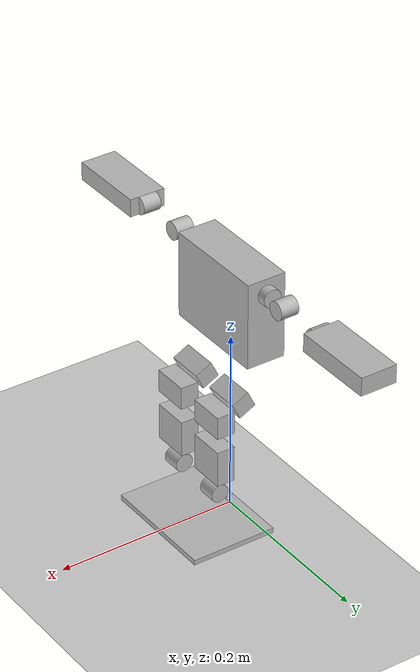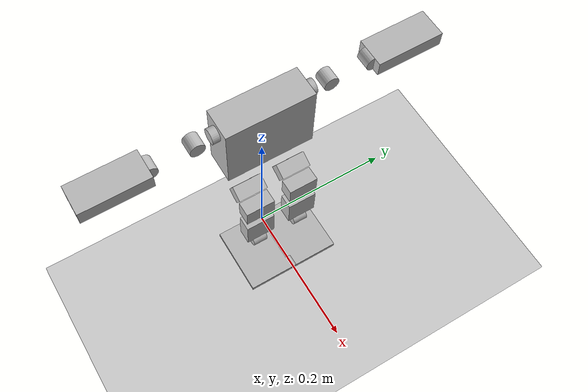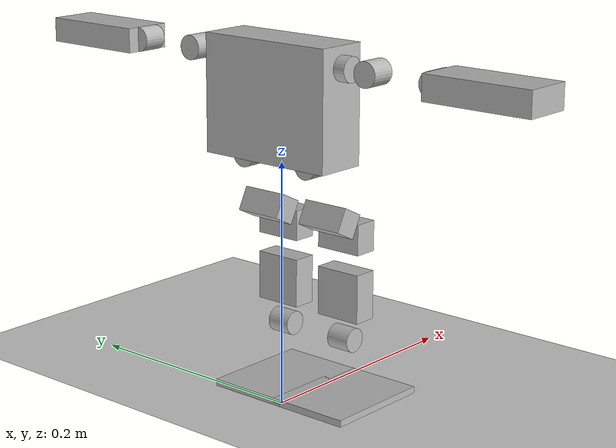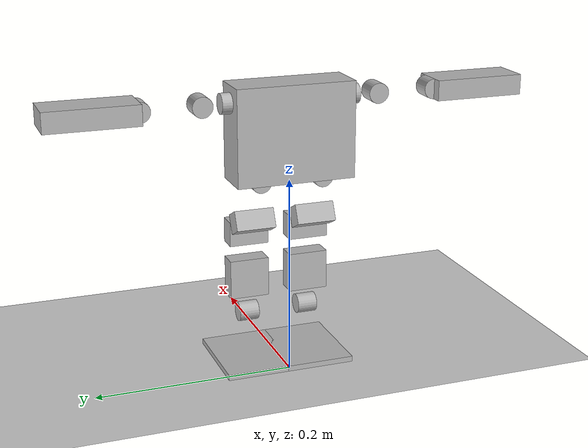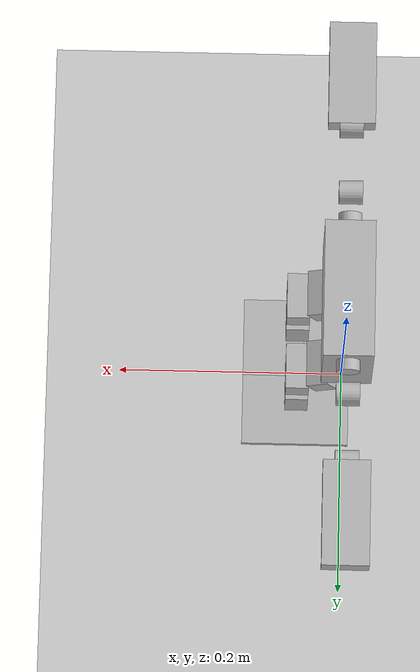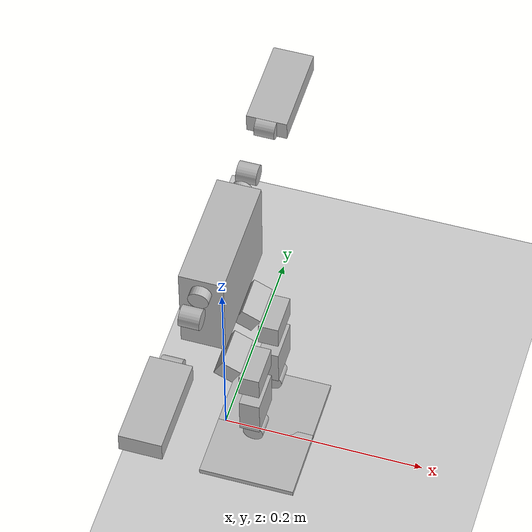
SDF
<sdf version="1.6">
  <world name="default">
    <physics name="default_physics" default="0" type="ode">
      <max_step_size>0.001</max_step_size>
      <real_time_factor>1</real_time_factor>
      <real_time_update_rate>1000</real_time_update_rate>
    </physics>
    <include>
      <uri>model://sun</uri>
    </include>
    <include>
      <uri>model://ground_plane</uri>
    </include>
    <include>
      <uri>model://lobot_h3p</uri>
    </include>
    <gravity>0 0 0</gravity>
    <atmosphere type="adiabatic" />
    <wind />
  </world>
</sdf>

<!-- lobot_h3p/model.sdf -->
<sdf version='1.6'>
  <model name='lobot'>
    <link name='base_link'>
      <pose frame=''>0 0 0.25 0 -0 0</pose>
      <inertial>
        <pose frame=''>-0.012076 -0.004415 0.021424 0 -0 0</pose>
        <mass>0.083321</mass>
        <inertia>
          <ixx>0.0341884</ixx>
          <ixy>8.97553e-06</ixy>
          <ixz>0.00238272</ixz>
          <iyy>0.0335204</iyy>
          <iyz>0.000494612</iyz>
          <izz>0.0451606</izz>
        </inertia>
      </inertial>
      <collision name='base_link_collision'>
        <pose frame=''>0 0 0 0 -0 0</pose>
        <geometry>
          <box>
            <size>0.043 0.118 0.095</size>
          </box>
        </geometry>
      </collision>
      <collision name='base_link_fixed_joint_lump__IMU_link_collision_1'>
        <pose frame=''>0 0 0 0 -0 0</pose>
        <geometry>
          <box>
            <size>0.001 0.001 0.001</size>
          </box>
        </geometry>
        <surface>
          <contact>
            <ode/>
          </contact>
          <friction>
            <ode/>
          </friction>
        </surface>
      </collision>
      <visual name='base_link_visual'>
        <pose frame=''>0 0 0 0 -0 0</pose>
        <geometry>
          <box>
            <size>0.043 0.118 0.095</size>
          </box>
        </geometry>
      </visual>
      <visual name='base_link_fixed_joint_lump__IMU_link_visual_1'>
        <pose frame=''>0 0 0 0 -0 0</pose>
        <geometry>
          <box>
            <size>0.001 0.001 0.001</size>
          </box>
        </geometry>
        <material>
          <script>
            <uri>__default__</uri>
            <name>__default__</name>
          </script>
        </material>
      </visual>
      <gravity>1</gravity>
      <velocity_decay/>
      <sensor name='IMU_lobot' type='imu'>
        <always_on>1</always_on>
        <update_rate>10</update_rate>
        <plugin name='lobot_IMU_controller' filename='libgazebo_ros_imu_sensor.so'/>
        <pose frame=''>0 0 0 0 -0 0</pose>
      </sensor>
    </link>
    <joint name='world_joint' type='fixed'>
      <child>base_link</child>
      <parent>world</parent>
    </joint>
    <link name='arm_left_1_link'>
      <pose frame=''>0 0.059 0.2805 0 -0 0</pose>
      <inertial>
        <pose frame=''>0 0 0 0 -0 0</pose>
        <mass>0.05901</mass>
        <inertia>
          <ixx>0.00132188</ixx>
          <ixy>1.514e-08</ixy>
          <ixz>0.000400223</ixz>
          <iyy>0.00185286</iyy>
          <iyz>5.0713e-07</iyz>
          <izz>0.000842313</izz>
        </inertia>
      </inertial>
      <visual name='arm_left_1_link_visual'>
        <pose frame=''>0 0 0 1.5708 -0 0</pose>
        <geometry>
          <cylinder>
            <length>0.02</length>
            <radius>0.01</radius>
          </cylinder>
        </geometry>
      </visual>
    </link>
    <joint name='arm_left_1_joint' type='revolute'>
      <child>arm_left_1_link</child>
      <parent>base_link</parent>
      <axis>
        <xyz>0 1 0</xyz>
        <limit>
          <lower>-1.57</lower>
          <upper>1.57</upper>
          <effort>50</effort>
          <velocity>4</velocity>
        </limit>
        <dynamics>
          <spring_reference>0</spring_reference>
          <spring_stiffness>0</spring_stiffness>
        </dynamics>
        <use_parent_model_frame>1</use_parent_model_frame>
      </axis>
    </joint>
    <link name='arm_left_2_link'>
      <pose frame=''>0 0.08803 0.2805 0 -0 0</pose>
      <inertial>
        <pose frame=''>0 0 0 0 -0 0</pose>
        <mass>0.05901</mass>
        <inertia>
          <ixx>0.00132188</ixx>
          <ixy>1.514e-08</ixy>
          <ixz>0.000400223</ixz>
          <iyy>0.00185286</iyy>
          <iyz>5.0713e-07</iyz>
          <izz>0.000842313</izz>
        </inertia>
      </inertial>
      <visual name='arm_left_2_link_visual'>
        <pose frame=''>0 0 0 3.14159 1.57079 3.14159</pose>
        <geometry>
          <cylinder>
            <length>0.02</length>
            <radius>0.01</radius>
          </cylinder>
        </geometry>
      </visual>
    </link>
    <joint name='arm_left_2_joint' type='revolute'>
      <child>arm_left_2_link</child>
      <parent>arm_left_1_link</parent>
      <axis>
        <xyz>1 0 0</xyz>
        <limit>
          <lower>-1.5708</lower>
          <upper>1.5708</upper>
          <effort>50</effort>
          <velocity>4</velocity>
        </limit>
        <dynamics>
          <spring_reference>0</spring_reference>
          <spring_stiffness>0</spring_stiffness>
        </dynamics>
        <use_parent_model_frame>1</use_parent_model_frame>
      </axis>
    </joint>
    <link name='arm_left_3_link'>
      <pose frame=''>0 0.14659 0.2805 0 -0 0</pose>
      <inertial>
        <pose frame=''>0 0.0225 0 0 -0 0</pose>
        <mass>0.11802</mass>
        <inertia>
          <ixx>0.0027035</ixx>
          <ixy>3.028e-08</ixy>
          <ixz>0.000800445</ixz>
          <iyy>0.00370572</iyy>
          <iyz>1.01426e-06</iyz>
          <izz>0.00174437</izz>
        </inertia>
      </inertial>
      <collision name='arm_left_3_link_fixed_joint_lump__gripper_left_link_collision'>
        <pose frame=''>0 0.045 0 0 -0 0</pose>
        <geometry>
          <box>
            <size>0.04 0.09 0.02</size>
          </box>
        </geometry>
      </collision>
      <visual name='arm_left_3_link_visual'>
        <pose frame=''>0 0 0 3.14159 1.57079 3.14159</pose>
        <geometry>
          <cylinder>
            <length>0.02</length>
            <radius>0.01</radius>
          </cylinder>
        </geometry>
      </visual>
      <visual name='arm_left_3_link_fixed_joint_lump__gripper_left_link_visual_1'>
        <pose frame=''>0 0.045 0 0 -0 0</pose>
        <geometry>
          <box>
            <size>0.04 0.09 0.02</size>
          </box>
        </geometry>
      </visual>
    </link>
    <joint name='arm_left_3_joint' type='revolute'>
      <child>arm_left_3_link</child>
      <parent>arm_left_2_link</parent>
      <axis>
        <xyz>1 0 0</xyz>
        <limit>
          <lower>-1.5708</lower>
          <upper>1.5708</upper>
          <effort>50</effort>
          <velocity>4</velocity>
        </limit>
        <dynamics>
          <spring_reference>0</spring_reference>
          <spring_stiffness>0</spring_stiffness>
        </dynamics>
        <use_parent_model_frame>1</use_parent_model_frame>
      </axis>
    </joint>
    <link name='arm_right_1_link'>
      <pose frame=''>0 -0.059 0.2805 0 -0 0</pose>
      <inertial>
        <pose frame=''>0 0 0 0 -0 0</pose>
        <mass>0.05901</mass>
        <inertia>
          <ixx>0.00132188</ixx>
          <ixy>1.514e-08</ixy>
          <ixz>0.000400223</ixz>
          <iyy>0.00185286</iyy>
          <iyz>5.0713e-07</iyz>
          <izz>0.000842313</izz>
        </inertia>
      </inertial>
      <visual name='arm_right_1_link_visual'>
        <pose frame=''>0 0 0 1.5708 -0 0</pose>
        <geometry>
          <cylinder>
            <length>0.02</length>
            <radius>0.01</radius>
          </cylinder>
        </geometry>
      </visual>
    </link>
    <joint name='arm_right_1_joint' type='revolute'>
      <child>arm_right_1_link</child>
      <parent>base_link</parent>
      <axis>
        <xyz>0 1 0</xyz>
        <limit>
          <lower>-1.57</lower>
          <upper>1.57</upper>
          <effort>50</effort>
          <velocity>4</velocity>
        </limit>
        <dynamics>
          <spring_reference>0</spring_reference>
          <spring_stiffness>0</spring_stiffness>
        </dynamics>
        <use_parent_model_frame>1</use_parent_model_frame>
      </axis>
    </joint>
    <link name='arm_right_2_link'>
      <pose frame=''>0 -0.08803 0.2805 0 -0 0</pose>
      <inertial>
        <pose frame=''>0 0 0 0 -0 0</pose>
        <mass>0.05901</mass>
        <inertia>
          <ixx>0.00132188</ixx>
          <ixy>1.514e-08</ixy>
          <ixz>0.000400223</ixz>
          <iyy>0.00185286</iyy>
          <iyz>5.0713e-07</iyz>
          <izz>0.000842313</izz>
        </inertia>
      </inertial>
      <visual name='arm_right_2_link_visual'>
        <pose frame=''>0 0 0 3.14159 1.57079 3.14159</pose>
        <geometry>
          <cylinder>
            <length>0.02</length>
            <radius>0.01</radius>
          </cylinder>
        </geometry>
      </visual>
    </link>
    <joint name='arm_right_2_joint' type='revolute'>
      <child>arm_right_2_link</child>
      <parent>arm_right_1_link</parent>
      <axis>
        <xyz>1 0 0</xyz>
        <limit>
          <lower>-1.5708</lower>
          <upper>1.5708</upper>
          <effort>50</effort>
          <velocity>4</velocity>
        </limit>
        <dynamics>
          <spring_reference>0</spring_reference>
          <spring_stiffness>0</spring_stiffness>
        </dynamics>
        <use_parent_model_frame>1</use_parent_model_frame>
      </axis>
    </joint>
    <link name='arm_right_3_link'>
      <pose frame=''>0 -0.14659 0.2805 0 -0 0</pose>
      <inertial>
        <pose frame=''>0 -0.0225 0 0 -0 0</pose>
        <mass>0.11802</mass>
        <inertia>
          <ixx>0.0027035</ixx>
          <ixy>3.028e-08</ixy>
          <ixz>0.000800445</ixz>
          <iyy>0.00370572</iyy>
          <iyz>1.01426e-06</iyz>
          <izz>0.00174437</izz>
        </inertia>
      </inertial>
      <collision name='arm_right_3_link_fixed_joint_lump__gripper_right_link_collision'>
        <pose frame=''>0 -0.045 0 0 -0 0</pose>
        <geometry>
          <box>
            <size>0.04 0.09 0.02</size>
          </box>
        </geometry>
      </collision>
      <visual name='arm_right_3_link_visual'>
        <pose frame=''>0 0 0 3.14159 1.57079 3.14159</pose>
        <geometry>
          <cylinder>
            <length>0.02</length>
            <radius>0.01</radius>
          </cylinder>
        </geometry>
      </visual>
      <visual name='arm_right_3_link_fixed_joint_lump__gripper_right_link_visual_1'>
        <pose frame=''>0 -0.045 0 0 -0 0</pose>
        <geometry>
          <box>
            <size>0.04 0.09 0.02</size>
          </box>
        </geometry>
      </visual>
    </link>
    <joint name='arm_right_3_joint' type='revolute'>
      <child>arm_right_3_link</child>
      <parent>arm_right_2_link</parent>
      <axis>
        <xyz>1 0 0</xyz>
        <limit>
          <lower>-1.5708</lower>
          <upper>1.5708</upper>
          <effort>50</effort>
          <velocity>4</velocity>
        </limit>
        <dynamics>
          <spring_reference>0</spring_reference>
          <spring_stiffness>0</spring_stiffness>
        </dynamics>
        <use_parent_model_frame>1</use_parent_model_frame>
      </axis>
    </joint>
    <link name='leg_left_1_link'>
      <pose frame=''>0 0.0315 0.2025 0 -0 0</pose>
      <inertial>
        <pose frame=''>0 0 0 0 -0 0</pose>
        <mass>0.02901</mass>
        <inertia>
          <ixx>0.00132188</ixx>
          <ixy>1.514e-08</ixy>
          <ixz>0.000400223</ixz>
          <iyy>0.00185286</iyy>
          <iyz>5.0713e-07</iyz>
          <izz>0.000842313</izz>
        </inertia>
      </inertial>
      <collision name='leg_left_1_link_collision'>
        <pose frame=''>0 0 0 3.14159 1.57079 3.14159</pose>
        <geometry>
          <cylinder>
            <length>0.02</length>
            <radius>0.01</radius>
          </cylinder>
        </geometry>
        <surface>
          <contact>
            <ode/>
          </contact>
          <friction>
            <ode>
              <mu>0.9</mu>
              <mu2>0.9</mu2>
            </ode>
          </friction>
        </surface>
      </collision>
      <visual name='leg_left_1_link_visual'>
        <pose frame=''>0 0 0 3.14159 1.57079 3.14159</pose>
        <geometry>
          <cylinder>
            <length>0.02</length>
            <radius>0.01</radius>
          </cylinder>
        </geometry>
        <material>
          <script>
            <uri>__default__</uri>
            <name>__default__</name>
          </script>
        </material>
      </visual>
      <gravity>1</gravity>
      <velocity_decay/>
    </link>
    <joint name='leg_left_1_joint' type='revolute'>
      <child>leg_left_1_link</child>
      <parent>base_link</parent>
      <axis>
        <xyz>1 0 0</xyz>
        <limit>
          <lower>-1.2</lower>
          <upper>1.2</upper>
          <effort>50</effort>
          <velocity>4</velocity>
        </limit>
        <dynamics>
          <spring_reference>0</spring_reference>
          <spring_stiffness>0</spring_stiffness>
        </dynamics>
        <use_parent_model_frame>1</use_parent_model_frame>
      </axis>
      <physics>
        <ode>
          <implicit_spring_damper>1</implicit_spring_damper>
          <cfm_damping>1</cfm_damping>
          <limit>
            <cfm>0</cfm>
            <erp>0.2</erp>
          </limit>
        </ode>
      </physics>
    </joint>
    <link name='leg_left_2_link'>
      <pose frame=''>0 0.0315 0.15543 0 -0 0</pose>
      <inertial>
        <pose frame=''>0.014975 0 -0.007298 0 -0 0</pose>
        <mass>0.109621</mass>
        <inertia>
          <ixx>0.00169346</ixx>
          <ixy>-5.37486e-06</ixy>
          <ixz>3.41958e-05</ixz>
          <iyy>0.000848847</iyy>
          <iyz>5.33794e-05</iyz>
          <izz>0.00172672</izz>
        </inertia>
      </inertial>
      <collision name='leg_left_2_link_collision'>
        <pose frame=''>0.02 0 0 0 0.463647 0</pose>
        <geometry>
          <box>
            <size>0.02 0.04 0.02</size>
          </box>
        </geometry>
      </collision>
      <collision name='leg_left_2_link_fixed_joint_lump__leg_left_3a_link_collision_1'>
        <pose frame=''>0.04104 0 -0.016 0 -0 0</pose>
        <geometry>
          <box>
            <size>0.02 0.04 0.025</size>
          </box>
        </geometry>
      </collision>
      <visual name='leg_left_2_link_visual'>
        <pose frame=''>0.02 0 0 0 0.463647 0</pose>
        <geometry>
          <box>
            <size>0.02 0.04 0.02</size>
          </box>
        </geometry>
      </visual>
      <visual name='leg_left_2_link_fixed_joint_lump__leg_left_3a_link_visual_1'>
        <pose frame=''>0.04104 0 -0.016 0 -0 0</pose>
        <geometry>
          <box>
            <size>0.02 0.04 0.025</size>
          </box>
        </geometry>
      </visual>
    </link>
    <joint name='leg_left_2_joint' type='revolute'>
      <child>leg_left_2_link</child>
      <parent>leg_left_1_link</parent>
      <axis>
        <xyz>0 1 0</xyz>
        <limit>
          <lower>-1.2</lower>
          <upper>1.2</upper>
          <effort>50</effort>
          <velocity>4</velocity>
        </limit>
        <dynamics>
          <spring_reference>0</spring_reference>
          <spring_stiffness>0</spring_stiffness>
        </dynamics>
        <use_parent_model_frame>1</use_parent_model_frame>
      </axis>
      <physics>
        <ode>
          <implicit_spring_damper>1</implicit_spring_damper>
          <cfm_damping>1</cfm_damping>
          <limit>
            <cfm>0</cfm>
            <erp>0.2</erp>
          </limit>
        </ode>
      </physics>
    </joint>
    <link name='leg_left_3_link'>
      <pose frame=''>0.04104 0.0315 0.11066 0 -0 0</pose>
      <inertial>
        <pose frame=''>0 0 0 0 -0 0</pose>
        <mass>0.05</mass>
        <inertia>
          <ixx>0.000841648</ixx>
          <ixy>-2.68743e-06</ixy>
          <ixz>6.67199e-06</ixz>
          <iyy>0.000397948</iyy>
          <iyz>2.66897e-05</iyz>
          <izz>0.000841967</izz>
        </inertia>
      </inertial>
      <collision name='leg_left_3_link_collision'>
        <pose frame=''>0 0 -0.02 0 -0 0</pose>
        <geometry>
          <box>
            <size>0.02 0.04 0.04</size>
          </box>
        </geometry>
      </collision>
      <visual name='leg_left_3_link_visual'>
        <pose frame=''>0 0 -0.02 0 -0 0</pose>
        <geometry>
          <box>
            <size>0.02 0.04 0.04</size>
          </box>
        </geometry>
      </visual>
    </link>
    <joint name='leg_left_3_joint' type='revolute'>
      <child>leg_left_3_link</child>
      <parent>leg_left_2_link</parent>
      <axis>
        <xyz>0 1 0</xyz>
        <limit>
          <lower>-1.2</lower>
          <upper>1.2</upper>
          <effort>50</effort>
          <velocity>4</velocity>
        </limit>
        <dynamics>
          <spring_reference>0</spring_reference>
          <spring_stiffness>0</spring_stiffness>
        </dynamics>
        <use_parent_model_frame>1</use_parent_model_frame>
      </axis>
      <physics>
        <ode>
          <implicit_spring_damper>1</implicit_spring_damper>
          <cfm_damping>1</cfm_damping>
          <limit>
            <cfm>0</cfm>
            <erp>0.2</erp>
          </limit>
        </ode>
      </physics>
    </joint>
    <link name='leg_left_4_link'>
      <pose frame=''>0.04104 0.0315 0.0521 0 -0 0</pose>
      <inertial>
        <pose frame=''>0 0 0 0 -0 0</pose>
        <mass>0.06</mass>
        <inertia>
          <ixx>0.000841648</ixx>
          <ixy>-2.68743e-06</ixy>
          <ixz>6.67199e-06</ixz>
          <iyy>0.000397948</iyy>
          <iyz>2.66897e-05</iyz>
          <izz>0.000841967</izz>
        </inertia>
      </inertial>
      <collision name='leg_left_4_link_collision'>
        <pose frame=''>0 0 0 1.5708 -0 0</pose>
        <geometry>
          <cylinder>
            <length>0.02</length>
            <radius>0.01</radius>
          </cylinder>
        </geometry>
      </collision>
      <visual name='leg_left_4_link_visual'>
        <pose frame=''>0 0 0 1.5708 -0 0</pose>
        <geometry>
          <cylinder>
            <length>0.02</length>
            <radius>0.01</radius>
          </cylinder>
        </geometry>
      </visual>
    </link>
    <joint name='leg_left_4_joint' type='revolute'>
      <child>leg_left_4_link</child>
      <parent>leg_left_3_link</parent>
      <axis>
        <xyz>0 1 0</xyz>
        <limit>
          <lower>-1.2</lower>
          <upper>1.2</upper>
          <effort>50</effort>
          <velocity>4</velocity>
        </limit>
        <dynamics>
          <damping>1</damping>
          <friction>1</friction>
          <spring_reference>0</spring_reference>
          <spring_stiffness>0</spring_stiffness>
        </dynamics>
        <use_parent_model_frame>1</use_parent_model_frame>
      </axis>
      <physics>
        <ode>
          <implicit_spring_damper>1</implicit_spring_damper>
          <cfm_damping>1</cfm_damping>
          <limit>
            <cfm>0</cfm>
            <erp>0.2</erp>
          </limit>
        </ode>
      </physics>
    </joint>
    <link name='leg_left_5_link'>
      <pose frame=''>0.04104 0.0315 0.00503 0 -0 0</pose>
      <inertial>
        <pose frame=''>0 0 0 0 -0 0</pose>
        <mass>0.05</mass>
        <inertia>
          <ixx>0.000841648</ixx>
          <ixy>-2.68743e-06</ixy>
          <ixz>6.67199e-06</ixz>
          <iyy>0.000397948</iyy>
          <iyz>2.66897e-05</iyz>
          <izz>0.000841967</izz>
        </inertia>
      </inertial>
      <collision name='leg_left_5_link_collision'>
        <pose frame=''>0 0 -0.005 0 -0 0</pose>
        <geometry>
          <box>
            <size>0.095 0.07 0.01</size>
          </box>
        </geometry>
      </collision>
      <visual name='leg_left_5_link_visual'>
        <pose frame=''>0 0 -0.005 0 -0 0</pose>
        <geometry>
          <box>
            <size>0.095 0.07 0.01</size>
          </box>
        </geometry>
      </visual>
    </link>
    <joint name='leg_left_5_joint' type='revolute'>
      <child>leg_left_5_link</child>
      <parent>leg_left_4_link</parent>
      <axis>
        <xyz>1 0 0</xyz>
        <limit>
          <lower>-1.2</lower>
          <upper>1.2</upper>
          <effort>50</effort>
          <velocity>4</velocity>
        </limit>
        <dynamics>
          <spring_reference>0</spring_reference>
          <spring_stiffness>0</spring_stiffness>
        </dynamics>
        <use_parent_model_frame>1</use_parent_model_frame>
      </axis>
    </joint>
    <link name='leg_right_1_link'>
      <pose frame=''>0 -0.0315 0.2025 0 -0 0</pose>
      <inertial>
        <pose frame=''>0 0 0 0 -0 0</pose>
        <mass>0.02901</mass>
        <inertia>
          <ixx>0.00132188</ixx>
          <ixy>1.514e-08</ixy>
          <ixz>0.000400223</ixz>
          <iyy>0.00185286</iyy>
          <iyz>5.0713e-07</iyz>
          <izz>0.000842313</izz>
        </inertia>
      </inertial>
      <collision name='leg_right_1_link_collision'>
        <pose frame=''>0 0 0 3.14159 1.57079 3.14159</pose>
        <geometry>
          <cylinder>
            <length>0.02</length>
            <radius>0.01</radius>
          </cylinder>
        </geometry>
        <surface>
          <contact>
            <ode/>
          </contact>
          <friction>
            <ode>
              <mu>0.9</mu>
              <mu2>0.9</mu2>
            </ode>
          </friction>
        </surface>
      </collision>
      <visual name='leg_right_1_link_visual'>
        <pose frame=''>0 0 0 3.14159 1.57079 3.14159</pose>
        <geometry>
          <cylinder>
            <length>0.02</length>
            <radius>0.01</radius>
          </cylinder>
        </geometry>
        <material>
          <script>
            <uri>__default__</uri>
            <name>__default__</name>
          </script>
        </material>
      </visual>
      <gravity>1</gravity>
      <velocity_decay/>
    </link>
    <joint name='leg_right_1_joint' type='revolute'>
      <child>leg_right_1_link</child>
      <parent>base_link</parent>
      <axis>
        <xyz>1 0 0</xyz>
        <limit>
          <lower>-1.2</lower>
          <upper>1.2</upper>
          <effort>50</effort>
          <velocity>4</velocity>
        </limit>
        <dynamics>
          <spring_reference>0</spring_reference>
          <spring_stiffness>0</spring_stiffness>
        </dynamics>
        <use_parent_model_frame>1</use_parent_model_frame>
      </axis>
      <physics>
        <ode>
          <implicit_spring_damper>1</implicit_spring_damper>
          <cfm_damping>1</cfm_damping>
          <limit>
            <cfm>0</cfm>
            <erp>0.2</erp>
          </limit>
        </ode>
      </physics>
    </joint>
    <link name='leg_right_2_link'>
      <pose frame=''>0 -0.0315 0.15543 0 -0 0</pose>
      <inertial>
        <pose frame=''>0.014975 0 -0.007298 0 -0 0</pose>
        <mass>0.109621</mass>
        <inertia>
          <ixx>0.00169346</ixx>
          <ixy>-5.37486e-06</ixy>
          <ixz>3.41958e-05</ixz>
          <iyy>0.000848847</iyy>
          <iyz>5.33794e-05</iyz>
          <izz>0.00172672</izz>
        </inertia>
      </inertial>
      <collision name='leg_right_2_link_collision'>
        <pose frame=''>0.02 0 0 0 0.463647 0</pose>
        <geometry>
          <box>
            <size>0.02 0.04 0.02</size>
          </box>
        </geometry>
      </collision>
      <collision name='leg_right_2_link_fixed_joint_lump__leg_right_3a_link_collision_1'>
        <pose frame=''>0.04104 0 -0.016 0 -0 0</pose>
        <geometry>
          <box>
            <size>0.02 0.04 0.025</size>
          </box>
        </geometry>
      </collision>
      <visual name='leg_right_2_link_visual'>
        <pose frame=''>0.02 0 0 0 0.463647 0</pose>
        <geometry>
          <box>
            <size>0.02 0.04 0.02</size>
          </box>
        </geometry>
      </visual>
      <visual name='leg_right_2_link_fixed_joint_lump__leg_right_3a_link_visual_1'>
        <pose frame=''>0.04104 0 -0.016 0 -0 0</pose>
        <geometry>
          <box>
            <size>0.02 0.04 0.025</size>
          </box>
        </geometry>
      </visual>
    </link>
    <joint name='leg_right_2_joint' type='revolute'>
      <child>leg_right_2_link</child>
      <parent>leg_right_1_link</parent>
      <axis>
        <xyz>0 1 0</xyz>
        <limit>
          <lower>-1.2</lower>
          <upper>1.2</upper>
          <effort>50</effort>
          <velocity>4</velocity>
        </limit>
        <dynamics>
          <spring_reference>0</spring_reference>
          <spring_stiffness>0</spring_stiffness>
        </dynamics>
        <use_parent_model_frame>1</use_parent_model_frame>
      </axis>
      <physics>
        <ode>
          <implicit_spring_damper>1</implicit_spring_damper>
          <cfm_damping>1</cfm_damping>
          <limit>
            <cfm>0</cfm>
            <erp>0.2</erp>
          </limit>
        </ode>
      </physics>
    </joint>
    <link name='leg_right_3_link'>
      <pose frame=''>0.04104 -0.0315 0.11066 0 -0 0</pose>
      <inertial>
        <pose frame=''>0 0 0 0 -0 0</pose>
        <mass>0.05</mass>
        <inertia>
          <ixx>0.000841648</ixx>
          <ixy>-2.68743e-06</ixy>
          <ixz>6.67199e-06</ixz>
          <iyy>0.000397948</iyy>
          <iyz>2.66897e-05</iyz>
          <izz>0.000841967</izz>
        </inertia>
      </inertial>
      <collision name='leg_right_3_link_collision'>
        <pose frame=''>0 0 -0.02 0 -0 0</pose>
        <geometry>
          <box>
            <size>0.02 0.04 0.04</size>
          </box>
        </geometry>
      </collision>
      <visual name='leg_right_3_link_visual'>
        <pose frame=''>0 0 -0.02 0 -0 0</pose>
        <geometry>
          <box>
            <size>0.02 0.04 0.04</size>
          </box>
        </geometry>
      </visual>
    </link>
    <joint name='leg_right_3_joint' type='revolute'>
      <child>leg_right_3_link</child>
      <parent>leg_right_2_link</parent>
      <axis>
        <xyz>0 1 0</xyz>
        <limit>
          <lower>-1.2</lower>
          <upper>1.2</upper>
          <effort>50</effort>
          <velocity>4</velocity>
        </limit>
        <dynamics>
          <spring_reference>0</spring_reference>
          <spring_stiffness>0</spring_stiffness>
        </dynamics>
        <use_parent_model_frame>1</use_parent_model_frame>
      </axis>
      <physics>
        <ode>
          <implicit_spring_damper>1</implicit_spring_damper>
          <cfm_damping>1</cfm_damping>
          <limit>
            <cfm>0</cfm>
            <erp>0.2</erp>
          </limit>
        </ode>
      </physics>
    </joint>
    <link name='leg_right_4_link'>
      <pose frame=''>0.04104 -0.0315 0.0521 0 -0 0</pose>
      <inertial>
        <pose frame=''>0 0 0 0 -0 0</pose>
        <mass>0.06</mass>
        <inertia>
          <ixx>0.000841648</ixx>
          <ixy>-2.68743e-06</ixy>
          <ixz>6.67199e-06</ixz>
          <iyy>0.000397948</iyy>
          <iyz>2.66897e-05</iyz>
          <izz>0.000841967</izz>
        </inertia>
      </inertial>
      <collision name='leg_right_4_link_collision'>
        <pose frame=''>0 0 0 1.5708 -0 0</pose>
        <geometry>
          <cylinder>
            <length>0.02</length>
            <radius>0.01</radius>
          </cylinder>
        </geometry>
      </collision>
      <visual name='leg_right_4_link_visual'>
        <pose frame=''>0 0 0 1.5708 -0 0</pose>
        <geometry>
          <cylinder>
            <length>0.02</length>
            <radius>0.01</radius>
          </cylinder>
        </geometry>
      </visual>
    </link>
    <joint name='leg_right_4_joint' type='revolute'>
      <child>leg_right_4_link</child>
      <parent>leg_right_3_link</parent>
      <axis>
        <xyz>0 1 0</xyz>
        <limit>
          <lower>-1.2</lower>
          <upper>1.2</upper>
          <effort>50</effort>
          <velocity>4</velocity>
        </limit>
        <dynamics>
          <damping>1</damping>
          <friction>1</friction>
          <spring_reference>0</spring_reference>
          <spring_stiffness>0</spring_stiffness>
        </dynamics>
        <use_parent_model_frame>1</use_parent_model_frame>
      </axis>
      <physics>
        <ode>
          <implicit_spring_damper>1</implicit_spring_damper>
          <cfm_damping>1</cfm_damping>
          <limit>
            <cfm>0</cfm>
            <erp>0.2</erp>
          </limit>
        </ode>
      </physics>
    </joint>
    <link name='leg_right_5_link'>
      <pose frame=''>0.04104 -0.0315 0.00503 0 -0 0</pose>
      <inertial>
        <pose frame=''>0 0 0 0 -0 0</pose>
        <mass>0.05</mass>
        <inertia>
          <ixx>0.000841648</ixx>
          <ixy>-2.68743e-06</ixy>
          <ixz>6.67199e-06</ixz>
          <iyy>0.000397948</iyy>
          <iyz>2.66897e-05</iyz>
          <izz>0.000841967</izz>
        </inertia>
      </inertial>
      <collision name='leg_right_5_link_collision'>
        <pose frame=''>0 0 -0.005 0 -0 0</pose>
        <geometry>
          <box>
            <size>0.095 0.07 0.01</size>
          </box>
        </geometry>
      </collision>
      <visual name='leg_right_5_link_visual'>
        <pose frame=''>0 0 -0.005 0 -0 0</pose>
        <geometry>
          <box>
            <size>0.095 0.07 0.01</size>
          </box>
        </geometry>
      </visual>
    </link>
    <joint name='leg_right_5_joint' type='revolute'>
      <child>leg_right_5_link</child>
      <parent>leg_right_4_link</parent>
      <axis>
        <xyz>1 0 0</xyz>
        <limit>
          <lower>-1.2</lower>
          <upper>1.2</upper>
          <effort>50</effort>
          <velocity>4</velocity>
        </limit>
        <dynamics>
          <spring_reference>0</spring_reference>
          <spring_stiffness>0</spring_stiffness>
        </dynamics>
        <use_parent_model_frame>1</use_parent_model_frame>
      </axis>
    </joint>
    <plugin name='my_joint_state_publisher' filename='libmy_joint_state_publisher.so'>
      <robot_name>lobot</robot_name>
      <update_rate>500</update_rate>
    </plugin>
    <static>0</static>
    <plugin name='robot_plugin_lobot' filename='librobot_plugin.so'>
      <robot_name>lobot</robot_name>
      <update_rate>100</update_rate>
    </plugin>
  </model>
</sdf>
